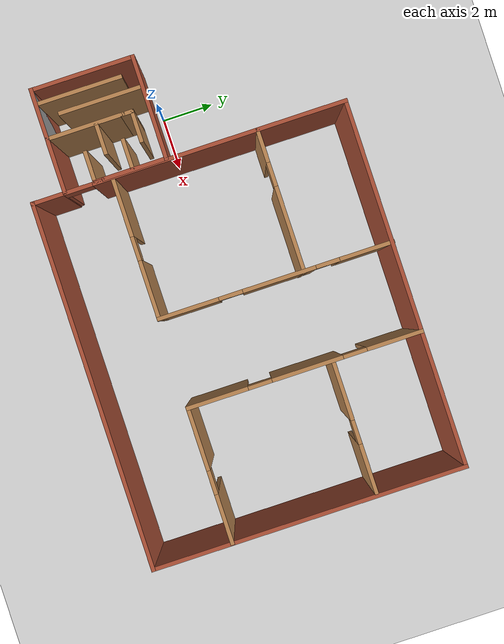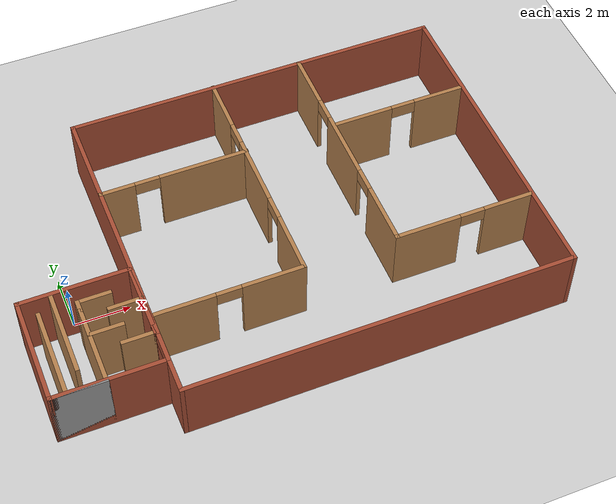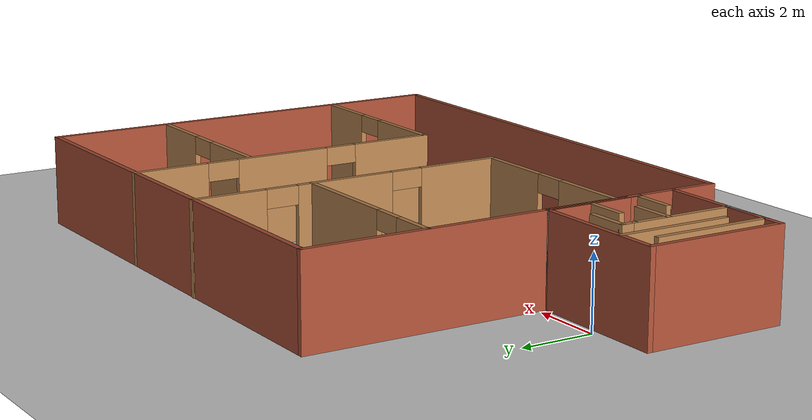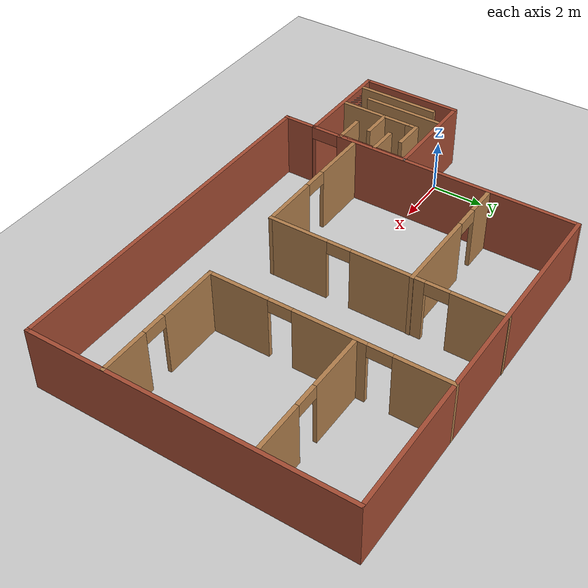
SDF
<sdf version="1.7">
 <world name="default">
  <light name="sun" type="directional">
   <pose>0 0 10 0 -0 0</pose>
   <diffuse>0.8 0.8 0.8 1</diffuse>
   <specular>0.2 0.2 0.2 1</specular>
   <attenuation>
    <range>1000</range>
    <constant>0.9</constant>
    <linear>0.01</linear>
    <quadratic>0.001</quadratic>
   </attenuation>
   <direction>-0.5 0.1 -0.9</direction>
   <spot><inner_angle>0</inner_angle><outer_angle>0</outer_angle><falloff>0</falloff></spot>
  </light>
  <model name="ground_plane">
   <static>1</static>
   <link name="link">
    <collision name="collision">
     <geometry><plane><normal>0 0 1</normal><size>100 100</size></plane></geometry>
     <surface>
      <contact><collide_bitmask>65535</collide_bitmask></contact>
      <friction><ode><mu>100</mu><mu2>50</mu2></ode></friction>
     </surface>
    </collision>
    <visual name="visual">
     <cast_shadows>0</cast_shadows>
     <geometry><plane><normal>0 0 1</normal><size>100 100</size></plane></geometry>
     <material>
      <script><uri>file://media/materials/scripts/gazebo.material</uri><name>Gazebo/Grey</name></script>
     </material>
    </visual>
   </link>
  </model>
  <gravity>0 0 -9.8</gravity>
  <magnetic_field>6e-06 2.3e-05 -4.2e-05</magnetic_field>
  <atmosphere type="adiabatic"/>
  <physics type="ode">
   <max_step_size>0.001</max_step_size>
   <real_time_factor>1</real_time_factor>
   <real_time_update_rate>1000</real_time_update_rate>
  </physics>
  <scene><ambient>0.4 0.4 0.4 1</ambient><background>0.7 0.7 0.7 1</background><shadows>1</shadows></scene>
  <audio><device>default</device></audio>
  <spherical_coordinates>
   <surface_model>EARTH_WGS84</surface_model>
   <latitude_deg>0</latitude_deg>
   <longitude_deg>0</longitude_deg>
   <elevation>0</elevation>
   <heading_deg>0</heading_deg>
  </spherical_coordinates>
  <model name="maze">
   <pose>0.205 -2.0975 0 0 -0 0</pose>
   <link name="Wall_0">
    <collision name="Wall_0_Collision">
     <geometry><box><size>4 0.15 2.5</size></box></geometry>
     <pose>0 0 1.25 0 -0 0</pose>
    </collision>
    <visual name="Wall_0_Visual">
     <pose>0 0 1.25 0 -0 0</pose>
     <geometry><box><size>4 0.15 2.5</size></box></geometry>
     <material>
      <script><uri>file://media/materials/scripts/gazebo.material</uri><name>Gazebo/Bricks</name></script>
      <ambient>1 1 1 1</ambient>
     </material>
     <meta><layer>0</layer></meta>
    </visual>
    <pose>0 -2.0225 0 0 -0 0</pose>
   </link>
   <link name="Wall_10">
    <collision name="Wall_10_Collision">
     <geometry><box><size>0.15 0.15 2.5</size></box></geometry>
     <pose>0 0 1.25 0 -0 0</pose>
    </collision>
    <visual name="Wall_10_Visual">
     <pose>0 0 1.25 0 -0 0</pose>
     <geometry><box><size>0.15 0.15 2.5</size></box></geometry>
     <material>
      <script><uri>file://media/materials/scripts/gazebo.material</uri><name>Gazebo/Grey</name></script>
      <ambient>1 1 1 1</ambient>
     </material>
     <meta><layer>0</layer></meta>
    </visual>
    <pose>-0.075 -2.0225 0 0 -0 0</pose>
   </link>
   <link name="Wall_11">
    <collision name="Wall_11_Collision">
     <geometry><box><size>3 0.15 2.5</size></box></geometry>
     <pose>0 0 1.25 0 -0 0</pose>
    </collision>
    <visual name="Wall_11_Visual">
     <pose>0 0 1.25 0 -0 0</pose>
     <geometry><box><size>3 0.15 2.5</size></box></geometry>
     <material>
      <script><uri>file://media/materials/scripts/gazebo.material</uri><name>Gazebo/Wood</name></script>
      <ambient>1 1 1 1</ambient>
     </material>
     <meta><layer>0</layer></meta>
    </visual>
    <pose>-0.075 -0.5975 0 0 -0 1.5708</pose>
   </link>
   <link name="Wall_15">
    <collision name="Wall_15_Collision">
     <geometry><box><size>0.5 0.15 2.5</size></box></geometry>
     <pose>0 0 1.25 0 -0 0</pose>
    </collision>
    <visual name="Wall_15_Visual">
     <pose>0 0 1.25 0 -0 0</pose>
     <geometry><box><size>0.5 0.15 2.5</size></box></geometry>
     <material>
      <script><uri>file://media/materials/scripts/gazebo.material</uri><name>Gazebo/Bricks</name></script>
      <ambient>1 1 1 1</ambient>
     </material>
     <meta><layer>0</layer></meta>
    </visual>
    <pose>1.925 -0.6975 0 0 -0 -1.5708</pose>
   </link>
   <link name="Wall_18">
    <collision name="Wall_18_Collision">
     <geometry><box><size>1.25 0.15 2.5</size></box></geometry>
     <pose>0 0 1.25 0 -0 0</pose>
    </collision>
    <visual name="Wall_18_Visual">
     <pose>0 0 1.25 0 -0 0</pose>
     <geometry><box><size>1.25 0.15 2.5</size></box></geometry>
     <material>
      <script><uri>file://media/materials/scripts/gazebo.material</uri><name>Gazebo/Wood</name></script>
      <ambient>1 1 1 1</ambient>
     </material>
     <meta><layer>0</layer></meta>
    </visual>
    <pose>1.375 -0.8725 0 0 -0 3.14159</pose>
   </link>
   <link name="Wall_2">
    <collision name="Wall_2_Collision">
     <geometry><box><size>0.15 0.15 2.5</size></box></geometry>
     <pose>0 0 1.25 0 -0 0</pose>
    </collision>
    <visual name="Wall_2_Visual">
     <pose>0 0 1.25 0 -0 0</pose>
     <geometry><box><size>0.15 0.15 2.5</size></box></geometry>
     <material>
      <script><uri>file://media/materials/scripts/gazebo.material</uri><name>Gazebo/Grey</name></script>
      <ambient>1 1 1 1</ambient>
     </material>
     <meta><layer>0</layer></meta>
    </visual>
    <pose>1.925 1.8275 0 0 -0 0</pose>
   </link>
   <link name="Wall_23">
    <collision name="Wall_23_Collision">
     <geometry><box><size>1.25 0.15 2.5</size></box></geometry>
     <pose>0 0 1.25 0 -0 0</pose>
    </collision>
    <visual name="Wall_23_Visual">
     <pose>0 0 1.25 0 -0 0</pose>
     <geometry><box><size>1.25 0.15 2.5</size></box></geometry>
     <material>
      <script><uri>file://media/materials/scripts/gazebo.material</uri><name>Gazebo/Wood</name></script>
      <ambient>1 1 1 1</ambient>
     </material>
     <meta><layer>0</layer></meta>
    </visual>
    <pose>0.485 -0.1825 0 0 -0 0</pose>
   </link>
   <link name="Wall_25">
    <collision name="Wall_25_Collision">
     <geometry><box><size>1.25 0.15 2.5</size></box></geometry>
     <pose>0 0 1.25 0 -0 0</pose>
    </collision>
    <visual name="Wall_25_Visual">
     <pose>0 0 1.25 0 -0 0</pose>
     <geometry><box><size>1.25 0.15 2.5</size></box></geometry>
     <material>
      <script><uri>file://media/materials/scripts/gazebo.material</uri><name>Gazebo/Wood</name></script>
      <ambient>1 1 1 1</ambient>
     </material>
     <meta><layer>0</layer></meta>
    </visual>
    <pose>1.375 0.5575 0 0 -0 3.14159</pose>
   </link>
   <link name="Wall_27">
    <collision name="Wall_27_Collision">
     <geometry><box><size>0.5 0.15 2.5</size></box></geometry>
     <pose>0 0 1.25 0 -0 0</pose>
    </collision>
    <visual name="Wall_27_Visual">
     <pose>0 0 1.25 0 -0 0</pose>
     <geometry><box><size>0.5 0.15 2.5</size></box></geometry>
     <material>
      <script><uri>file://media/materials/scripts/gazebo.material</uri><name>Gazebo/Wood</name></script>
      <ambient>1 1 1 1</ambient>
     </material>
     <meta><layer>0</layer></meta>
    </visual>
    <pose>-0.075 1.0025 0 0 -0 1.5708</pose>
   </link>
   <link name="Wall_28">
    <collision name="Wall_28_Collision">
     <geometry><box><size>1.25 0.15 2.5</size></box></geometry>
     <pose>0 0 1.25 0 -0 0</pose>
    </collision>
    <visual name="Wall_28_Visual">
     <pose>0 0 1.25 0 -0 0</pose>
     <geometry><box><size>1.25 0.15 2.5</size></box></geometry>
     <material>
      <script><uri>file://media/materials/scripts/gazebo.material</uri><name>Gazebo/Wood</name></script>
      <ambient>1 1 1 1</ambient>
     </material>
     <meta><layer>0</layer></meta>
    </visual>
    <pose>0.475 1.1775 0 0 -0 0</pose>
   </link>
   <link name="Wall_3">
    <collision name="Wall_3_Collision">
     <geometry><box><size>4 0.15 2.5</size></box></geometry>
     <pose>0 0 1.25 0 -0 0</pose>
    </collision>
    <visual name="Wall_3_Visual">
     <pose>0 0 1.25 0 -0 0</pose>
     <geometry><box><size>4 0.15 2.5</size></box></geometry>
     <material>
      <script><uri>file://media/materials/scripts/gazebo.material</uri><name>Gazebo/Bricks</name></script>
      <ambient>1 1 1 1</ambient>
     </material>
     <meta><layer>0</layer></meta>
    </visual>
    <pose>0 1.8275 0 0 -0 3.14159</pose>
   </link>
   <link name="Wall_33">
    <collision name="Wall_33_Collision">
     <geometry><box><size>3.25 0.15 2.5</size></box></geometry>
     <pose>0 0 1.25 0 -0 0</pose>
    </collision>
    <visual name="Wall_33_Visual">
     <pose>0 0 1.25 0 -0 0</pose>
     <geometry><box><size>3.25 0.15 2.5</size></box></geometry>
     <material>
      <script><uri>file://media/materials/scripts/gazebo.material</uri><name>Gazebo/Wood</name></script>
      <ambient>1 1 1 1</ambient>
     </material>
     <meta><layer>0</layer></meta>
    </visual>
    <pose>-0.815 0.2675 0 0 -0 -1.5708</pose>
   </link>
   <link name="Wall_35">
    <collision name="Wall_35_Collision">
     <geometry><box><size>3.25 0.15 2.5</size></box></geometry>
     <pose>0 0 1.25 0 -0 0</pose>
    </collision>
    <visual name="Wall_35_Visual">
     <pose>0 0 1.25 0 -0 0</pose>
     <geometry><box><size>3.25 0.15 2.5</size></box></geometry>
     <material>
      <script><uri>file://media/materials/scripts/gazebo.material</uri><name>Gazebo/Wood</name></script>
      <ambient>1 1 1 1</ambient>
     </material>
     <meta><layer>0</layer></meta>
    </visual>
    <pose>-1.385 -0.3825 0 0 -0 1.5708</pose>
   </link>
   <link name="Wall_4">
    <collision name="Wall_4_Collision">
     <geometry><box><size>4 0.15 2.5</size></box></geometry>
     <pose>0 0 1.25 0 -0 0</pose>
    </collision>
    <visual name="Wall_4_Visual">
     <pose>0 0 1.25 0 -0 0</pose>
     <geometry><box><size>4 0.15 2.5</size></box></geometry>
     <material>
      <script><uri>file://media/materials/scripts/gazebo.material</uri><name>Gazebo/Bricks</name></script>
      <ambient>1 1 1 1</ambient>
     </material>
     <meta><layer>0</layer></meta>
    </visual>
    <pose>-1.925 -0.0975 0 0 -0 -1.5708</pose>
   </link>
   <link name="Wall_6">
    <collision name="Wall_6_Collision">
     <geometry><box><size>2.5 0.15 2.5</size></box></geometry>
     <pose>0 0 1.25 0 -0 0</pose>
    </collision>
    <visual name="Wall_6_Visual">
     <pose>0 0 1.25 0 -0 0</pose>
     <geometry><box><size>2.5 0.15 2.5</size></box></geometry>
     <material>
      <script><uri>file://media/materials/scripts/gazebo.material</uri><name>Gazebo/Bricks</name></script>
      <ambient>1 1 1 1</ambient>
     </material>
     <meta><layer>0</layer></meta>
    </visual>
    <pose>1.925 0.6525 0 0 -0 -1.5708</pose>
   </link>
   <link name="Wall_9">
    <collision name="Wall_9_Collision">
     <geometry><box><size>2 0.15 2.5</size></box></geometry>
     <pose>0 0 1.25 0 -0 0</pose>
    </collision>
    <visual name="Wall_9_Visual">
     <pose>0 0 1.25 0 -0 0</pose>
     <geometry><box><size>2 0.15 2.5</size></box></geometry>
     <material>
      <script><uri>file://media/materials/scripts/gazebo.material</uri><name>Gazebo/Grey</name></script>
      <ambient>1 1 1 1</ambient>
     </material>
     <meta><layer>0</layer></meta>
    </visual>
    <pose>-1 -2.0225 0 0 -0 0</pose>
   </link>
   <static>1</static>
  </model>
  <model name="Untitled">
   <pose>9.10127 0.589713 0 0 -0 0</pose>
   <link name="Wall_1">
    <collision name="Wall_1_Collision">
     <geometry><box><size>14 0.15 2.5</size></box></geometry>
     <pose>0 0 1.25 0 -0 0</pose>
    </collision>
    <visual name="Wall_1_Visual">
     <pose>0 0 1.25 0 -0 0</pose>
     <geometry><box><size>14 0.15 2.5</size></box></geometry>
     <material>
      <script><uri>file://media/materials/scripts/gazebo.material</uri><name>Gazebo/Bricks</name></script>
      <ambient>1 1 1 1</ambient>
     </material>
     <meta><layer>0</layer></meta>
    </visual>
    <pose>6.8e-05 -5.93486 0 0 -0 0</pose>
   </link>
   <link name="Wall_10">
    <pose>1.80436 1.49014 0 0 -0 -1.5708</pose>
    <visual name="Wall_10_Visual_0">
     <pose>-3.4304 0 1.25 0 -0 0</pose>
     <geometry><box><size>2.1392 0.15 2.5</size></box></geometry>
     <material>
      <script><uri>file://media/materials/scripts/gazebo.material</uri><name>Gazebo/Wood</name></script>
      <ambient>1 1 1 1</ambient>
     </material>
     <meta><layer>0</layer></meta>
    </visual>
    <collision name="Wall_10_Collision_0">
     <geometry><box><size>2.1392 0.15 2.5</size></box></geometry>
     <pose>-3.4304 0 1.25 0 -0 0</pose>
    </collision>
    <visual name="Wall_10_Visual_1">
     <pose>-0.110639 0 1.25 0 -0 0</pose>
     <geometry><box><size>2.70033 0.15 2.5</size></box></geometry>
     <material>
      <script><uri>file://media/materials/scripts/gazebo.material</uri><name>Gazebo/Wood</name></script>
      <ambient>1 1 1 1</ambient>
     </material>
     <meta><layer>0</layer></meta>
    </visual>
    <collision name="Wall_10_Collision_1">
     <geometry><box><size>2.70033 0.15 2.5</size></box></geometry>
     <pose>-0.110639 0 1.25 0 -0 0</pose>
    </collision>
    <visual name="Wall_10_Visual_2">
     <pose>3.31976 0 1.25 0 -0 0</pose>
     <geometry><box><size>2.36047 0.15 2.5</size></box></geometry>
     <material>
      <script><uri>file://media/materials/scripts/gazebo.material</uri><name>Gazebo/Wood</name></script>
      <ambient>1 1 1 1</ambient>
     </material>
     <meta><layer>0</layer></meta>
    </visual>
    <collision name="Wall_10_Collision_2">
     <geometry><box><size>2.36047 0.15 2.5</size></box></geometry>
     <pose>3.31976 0 1.25 0 -0 0</pose>
    </collision>
    <visual name="Wall_10_Visual_3">
     <pose>-1.9108 0 2.25 0 -0 0</pose>
     <geometry><box><size>0.9 0.15 0.5</size></box></geometry>
     <material>
      <script><uri>file://media/materials/scripts/gazebo.material</uri><name>Gazebo/Wood</name></script>
      <ambient>1 1 1 1</ambient>
     </material>
     <meta><layer>0</layer></meta>
    </visual>
    <collision name="Wall_10_Collision_3">
     <geometry><box><size>0.9 0.15 0.5</size></box></geometry>
     <pose>-1.9108 0 2.25 0 -0 0</pose>
    </collision>
    <visual name="Wall_10_Visual_4">
     <pose>1.68953 0 2.25 0 -0 0</pose>
     <geometry><box><size>0.9 0.15 0.5</size></box></geometry>
     <material>
      <script><uri>file://media/materials/scripts/gazebo.material</uri><name>Gazebo/Wood</name></script>
      <ambient>1 1 1 1</ambient>
     </material>
     <meta><layer>0</layer></meta>
    </visual>
    <collision name="Wall_10_Collision_4">
     <geometry><box><size>0.9 0.15 0.5</size></box></geometry>
     <pose>1.68953 0 2.25 0 -0 0</pose>
    </collision>
   </link>
   <link name="Wall_11">
    <pose>4.35436 -2.93486 0 0 -0 0</pose>
    <visual name="Wall_11_Visual_0">
     <pose>-1.40455 0 1.25 0 -0 0</pose>
     <geometry><box><size>2.4409 0.15 2.5</size></box></geometry>
     <material>
      <script><uri>file://media/materials/scripts/gazebo.material</uri><name>Gazebo/Wood</name></script>
      <ambient>1 1 1 1</ambient>
     </material>
     <meta><layer>0</layer></meta>
    </visual>
    <collision name="Wall_11_Collision_0">
     <geometry><box><size>2.4409 0.15 2.5</size></box></geometry>
     <pose>-1.40455 0 1.25 0 -0 0</pose>
    </collision>
    <visual name="Wall_11_Visual_1">
     <pose>1.67045 0 1.25 0 -0 0</pose>
     <geometry><box><size>1.9091 0.15 2.5</size></box></geometry>
     <material>
      <script><uri>file://media/materials/scripts/gazebo.material</uri><name>Gazebo/Wood</name></script>
      <ambient>1 1 1 1</ambient>
     </material>
     <meta><layer>0</layer></meta>
    </visual>
    <collision name="Wall_11_Collision_1">
     <geometry><box><size>1.9091 0.15 2.5</size></box></geometry>
     <pose>1.67045 0 1.25 0 -0 0</pose>
    </collision>
    <visual name="Wall_11_Visual_2">
     <pose>0.2659 0 2.25 0 -0 0</pose>
     <geometry><box><size>0.9 0.15 0.5</size></box></geometry>
     <material>
      <script><uri>file://media/materials/scripts/gazebo.material</uri><name>Gazebo/Wood</name></script>
      <ambient>1 1 1 1</ambient>
     </material>
     <meta><layer>0</layer></meta>
    </visual>
    <collision name="Wall_11_Collision_2">
     <geometry><box><size>0.9 0.15 0.5</size></box></geometry>
     <pose>0.2659 0 2.25 0 -0 0</pose>
    </collision>
   </link>
   <link name="Wall_13">
    <pose>4.37015 2.55617 0 0 -0 0</pose>
    <visual name="Wall_13_Visual_0">
     <pose>-1.40023 0 1.25 0 -0 0</pose>
     <geometry><box><size>2.19954 0.15 2.5</size></box></geometry>
     <material>
      <script><uri>file://media/materials/scripts/gazebo.material</uri><name>Gazebo/Wood</name></script>
      <ambient>1 1 1 1</ambient>
     </material>
     <meta><layer>0</layer></meta>
    </visual>
    <collision name="Wall_13_Collision_0">
     <geometry><box><size>2.19954 0.15 2.5</size></box></geometry>
     <pose>-1.40023 0 1.25 0 -0 0</pose>
    </collision>
    <visual name="Wall_13_Visual_1">
     <pose>1.54977 0 1.25 0 -0 0</pose>
     <geometry><box><size>1.90046 0.15 2.5</size></box></geometry>
     <material>
      <script><uri>file://media/materials/scripts/gazebo.material</uri><name>Gazebo/Wood</name></script>
      <ambient>1 1 1 1</ambient>
     </material>
     <meta><layer>0</layer></meta>
    </visual>
    <collision name="Wall_13_Collision_1">
     <geometry><box><size>1.90046 0.15 2.5</size></box></geometry>
     <pose>1.54977 0 1.25 0 -0 0</pose>
    </collision>
    <visual name="Wall_13_Visual_2">
     <pose>0.149537 0 2.25 0 -0 0</pose>
     <geometry><box><size>0.9 0.15 0.5</size></box></geometry>
     <material>
      <script><uri>file://media/materials/scripts/gazebo.material</uri><name>Gazebo/Wood</name></script>
      <ambient>1 1 1 1</ambient>
     </material>
     <meta><layer>0</layer></meta>
    </visual>
    <collision name="Wall_13_Collision_2">
     <geometry><box><size>0.9 0.15 0.5</size></box></geometry>
     <pose>0.149537 0 2.25 0 -0 0</pose>
    </collision>
   </link>
   <link name="Wall_15">
    <pose>-6.92507 -0.01025 0 0 -0 -1.5708</pose>
    <visual name="Wall_15_Visual_0">
     <pose>-1.16972 0 1.25 0 -0 0</pose>
     <geometry><box><size>9.66055 0.15 2.5</size></box></geometry>
     <material>
      <script><uri>file://media/materials/scripts/gazebo.material</uri><name>Gazebo/Bricks</name></script>
      <ambient>1 1 1 1</ambient>
     </material>
     <meta><layer>0</layer></meta>
    </visual>
    <collision name="Wall_15_Collision_0">
     <geometry><box><size>9.66055 0.15 2.5</size></box></geometry>
     <pose>-1.16972 0 1.25 0 -0 0</pose>
    </collision>
    <visual name="Wall_15_Visual_1">
     <pose>5.38028 0 1.25 0 -0 0</pose>
     <geometry><box><size>1.23945 0.15 2.5</size></box></geometry>
     <material>
      <script><uri>file://media/materials/scripts/gazebo.material</uri><name>Gazebo/Bricks</name></script>
      <ambient>1 1 1 1</ambient>
     </material>
     <meta><layer>0</layer></meta>
    </visual>
    <collision name="Wall_15_Collision_1">
     <geometry><box><size>1.23945 0.15 2.5</size></box></geometry>
     <pose>5.38028 0 1.25 0 -0 0</pose>
    </collision>
    <visual name="Wall_15_Visual_2">
     <pose>4.21055 0 2.25 0 -0 0</pose>
     <geometry><box><size>1.1 0.15 0.5</size></box></geometry>
     <material>
      <script><uri>file://media/materials/scripts/gazebo.material</uri><name>Gazebo/Bricks</name></script>
      <ambient>1 1 1 1</ambient>
     </material>
     <meta><layer>0</layer></meta>
    </visual>
    <collision name="Wall_15_Collision_2">
     <geometry><box><size>1.1 0.15 0.5</size></box></geometry>
     <pose>4.21055 0 2.25 0 -0 0</pose>
    </collision>
   </link>
   <link name="Wall_2">
    <collision name="Wall_2_Collision">
     <geometry><box><size>12 0.15 2.5</size></box></geometry>
     <pose>0 0 1.25 0 -0 0</pose>
    </collision>
    <visual name="Wall_2_Visual">
     <pose>0 0 1.25 0 -0 0</pose>
     <geometry><box><size>12 0.15 2.5</size></box></geometry>
     <material>
      <script><uri>file://media/materials/scripts/gazebo.material</uri><name>Gazebo/Bricks</name></script>
      <ambient>1 1 1 1</ambient>
     </material>
     <meta><layer>0</layer></meta>
    </visual>
    <pose>6.92507 -0.009863 0 0 -0 1.5708</pose>
   </link>
   <link name="Wall_3">
    <collision name="Wall_3_Collision">
     <geometry><box><size>14 0.15 2.5</size></box></geometry>
     <pose>0 0 1.25 0 -0 0</pose>
    </collision>
    <visual name="Wall_3_Visual">
     <pose>0 0 1.25 0 -0 0</pose>
     <geometry><box><size>14 0.15 2.5</size></box></geometry>
     <material>
      <script><uri>file://media/materials/scripts/gazebo.material</uri><name>Gazebo/Bricks</name></script>
      <ambient>1 1 1 1</ambient>
     </material>
     <meta><layer>0</layer></meta>
    </visual>
    <pose>0 5.91494 0 0 -0 -3.14156</pose>
   </link>
   <link name="Wall_5">
    <pose>-1.57472 1.51025 0 0 -0 -1.5708</pose>
    <visual name="Wall_5_Visual_0">
     <pose>-3.46057 0 1.25 0 -0 0</pose>
     <geometry><box><size>2.07886 0.15 2.5</size></box></geometry>
     <material>
      <script><uri>file://media/materials/scripts/gazebo.material</uri><name>Gazebo/Wood</name></script>
      <ambient>1 1 1 1</ambient>
     </material>
     <meta><layer>0</layer></meta>
    </visual>
    <collision name="Wall_5_Collision_0">
     <geometry><box><size>2.07886 0.15 2.5</size></box></geometry>
     <pose>-3.46057 0 1.25 0 -0 0</pose>
    </collision>
    <visual name="Wall_5_Visual_1">
     <pose>-0.130752 0 1.25 0 -0 0</pose>
     <geometry><box><size>2.78078 0.15 2.5</size></box></geometry>
     <material>
      <script><uri>file://media/materials/scripts/gazebo.material</uri><name>Gazebo/Wood</name></script>
      <ambient>1 1 1 1</ambient>
     </material>
     <meta><layer>0</layer></meta>
    </visual>
    <collision name="Wall_5_Collision_1">
     <geometry><box><size>2.78078 0.15 2.5</size></box></geometry>
     <pose>-0.130752 0 1.25 0 -0 0</pose>
    </collision>
    <visual name="Wall_5_Visual_2">
     <pose>3.32982 0 1.25 0 -0 0</pose>
     <geometry><box><size>2.34036 0.15 2.5</size></box></geometry>
     <material>
      <script><uri>file://media/materials/scripts/gazebo.material</uri><name>Gazebo/Wood</name></script>
      <ambient>1 1 1 1</ambient>
     </material>
     <meta><layer>0</layer></meta>
    </visual>
    <collision name="Wall_5_Collision_2">
     <geometry><box><size>2.34036 0.15 2.5</size></box></geometry>
     <pose>3.32982 0 1.25 0 -0 0</pose>
    </collision>
    <visual name="Wall_5_Visual_3">
     <pose>-1.97114 0 2.25 0 -0 0</pose>
     <geometry><box><size>0.9 0.15 0.5</size></box></geometry>
     <material>
      <script><uri>file://media/materials/scripts/gazebo.material</uri><name>Gazebo/Wood</name></script>
      <ambient>1 1 1 1</ambient>
     </material>
     <meta><layer>0</layer></meta>
    </visual>
    <collision name="Wall_5_Collision_3">
     <geometry><box><size>0.9 0.15 0.5</size></box></geometry>
     <pose>-1.97114 0 2.25 0 -0 0</pose>
    </collision>
    <visual name="Wall_5_Visual_4">
     <pose>1.70964 0 2.25 0 -0 0</pose>
     <geometry><box><size>0.9 0.15 0.5</size></box></geometry>
     <material>
      <script><uri>file://media/materials/scripts/gazebo.material</uri><name>Gazebo/Wood</name></script>
      <ambient>1 1 1 1</ambient>
     </material>
     <meta><layer>0</layer></meta>
    </visual>
    <collision name="Wall_5_Collision_4">
     <geometry><box><size>0.9 0.15 0.5</size></box></geometry>
     <pose>1.70964 0 2.25 0 -0 0</pose>
    </collision>
   </link>
   <link name="Wall_6">
    <pose>-4.24972 -2.91475 0 0 -0 3.14159</pose>
    <visual name="Wall_6_Visual_0">
     <pose>-1.61 0 1.25 0 -0 0</pose>
     <geometry><box><size>2.27999 0.15 2.5</size></box></geometry>
     <material>
      <script><uri>file://media/materials/scripts/gazebo.material</uri><name>Gazebo/Wood</name></script>
      <ambient>1 1 1 1</ambient>
     </material>
     <meta><layer>0</layer></meta>
    </visual>
    <collision name="Wall_6_Collision_0">
     <geometry><box><size>2.27999 0.15 2.5</size></box></geometry>
     <pose>-1.61 0 1.25 0 -0 0</pose>
    </collision>
    <visual name="Wall_6_Visual_1">
     <pose>1.59 0 1.25 0 -0 0</pose>
     <geometry><box><size>2.32001 0.15 2.5</size></box></geometry>
     <material>
      <script><uri>file://media/materials/scripts/gazebo.material</uri><name>Gazebo/Wood</name></script>
      <ambient>1 1 1 1</ambient>
     </material>
     <meta><layer>0</layer></meta>
    </visual>
    <collision name="Wall_6_Collision_1">
     <geometry><box><size>2.32001 0.15 2.5</size></box></geometry>
     <pose>1.59 0 1.25 0 -0 0</pose>
    </collision>
    <visual name="Wall_6_Visual_2">
     <pose>-0.020009 0 2.25 0 -0 0</pose>
     <geometry><box><size>0.9 0.15 0.5</size></box></geometry>
     <material>
      <script><uri>file://media/materials/scripts/gazebo.material</uri><name>Gazebo/Wood</name></script>
      <ambient>1 1 1 1</ambient>
     </material>
     <meta><layer>0</layer></meta>
    </visual>
    <collision name="Wall_6_Collision_2">
     <geometry><box><size>0.9 0.15 0.5</size></box></geometry>
     <pose>-0.020009 0 2.25 0 -0 0</pose>
    </collision>
   </link>
   <link name="Wall_8">
    <pose>-4.22961 2.57628 0 0 -0 3.14159</pose>
    <visual name="Wall_8_Visual_0">
     <pose>-1.09711 0 1.25 0 -0 0</pose>
     <geometry><box><size>3.30578 0.15 2.5</size></box></geometry>
     <material>
      <script><uri>file://media/materials/scripts/gazebo.material</uri><name>Gazebo/Wood</name></script>
      <ambient>1 1 1 1</ambient>
     </material>
     <meta><layer>0</layer></meta>
    </visual>
    <collision name="Wall_8_Collision_0">
     <geometry><box><size>3.30578 0.15 2.5</size></box></geometry>
     <pose>-1.09711 0 1.25 0 -0 0</pose>
    </collision>
    <visual name="Wall_8_Visual_1">
     <pose>2.10289 0 1.25 0 -0 0</pose>
     <geometry><box><size>1.29422 0.15 2.5</size></box></geometry>
     <material>
      <script><uri>file://media/materials/scripts/gazebo.material</uri><name>Gazebo/Wood</name></script>
      <ambient>1 1 1 1</ambient>
     </material>
     <meta><layer>0</layer></meta>
    </visual>
    <collision name="Wall_8_Collision_1">
     <geometry><box><size>1.29422 0.15 2.5</size></box></geometry>
     <pose>2.10289 0 1.25 0 -0 0</pose>
    </collision>
    <visual name="Wall_8_Visual_2">
     <pose>1.00578 0 2.25 0 -0 0</pose>
     <geometry><box><size>0.9 0.15 0.5</size></box></geometry>
     <material>
      <script><uri>file://media/materials/scripts/gazebo.material</uri><name>Gazebo/Wood</name></script>
      <ambient>1 1 1 1</ambient>
     </material>
     <meta><layer>0</layer></meta>
    </visual>
    <collision name="Wall_8_Collision_2">
     <geometry><box><size>0.9 0.15 0.5</size></box></geometry>
     <pose>1.00578 0 2.25 0 -0 0</pose>
    </collision>
   </link>
   <static>1</static>
  </model>
 </world>
</sdf>
